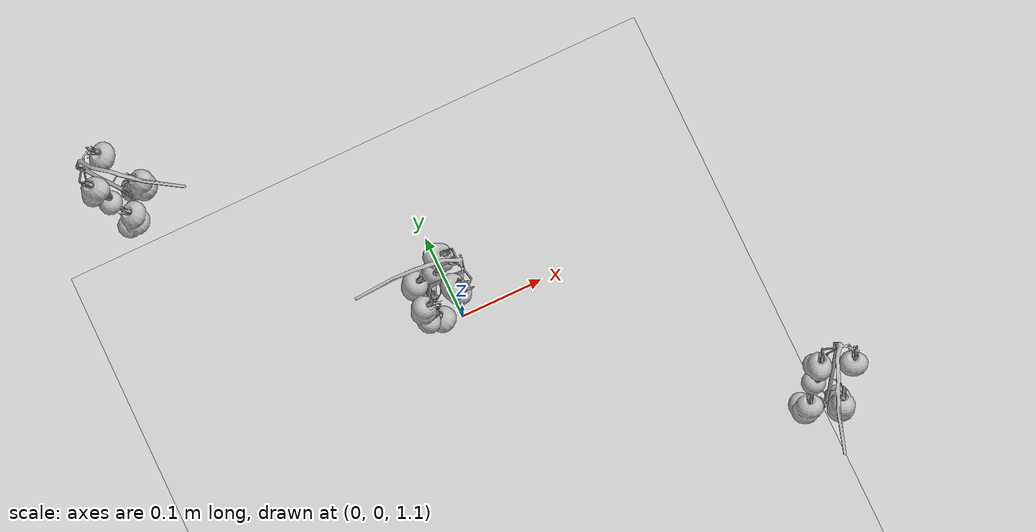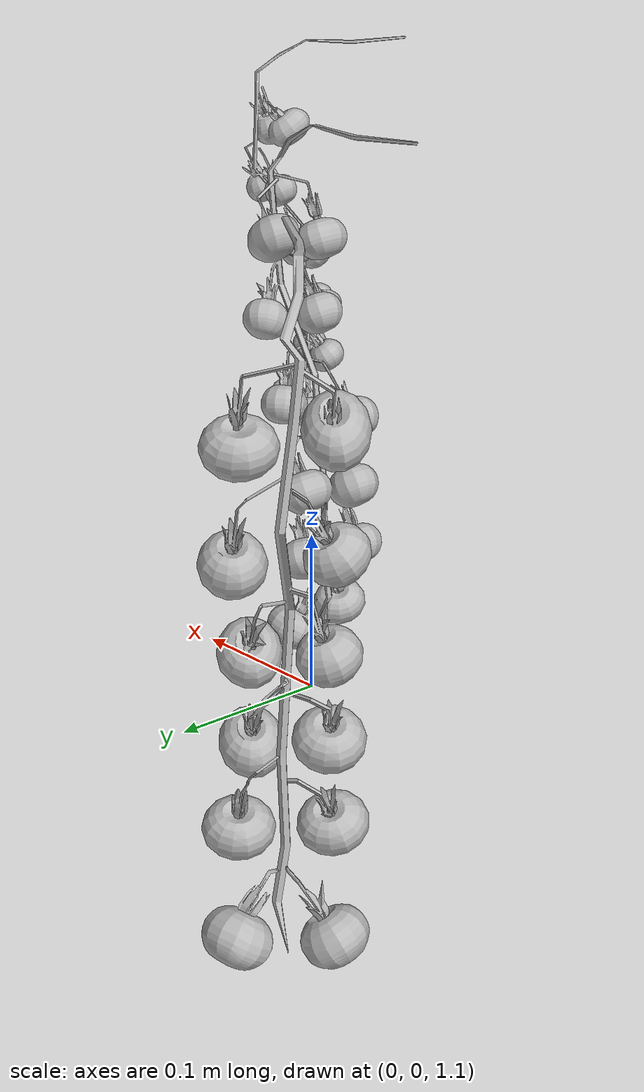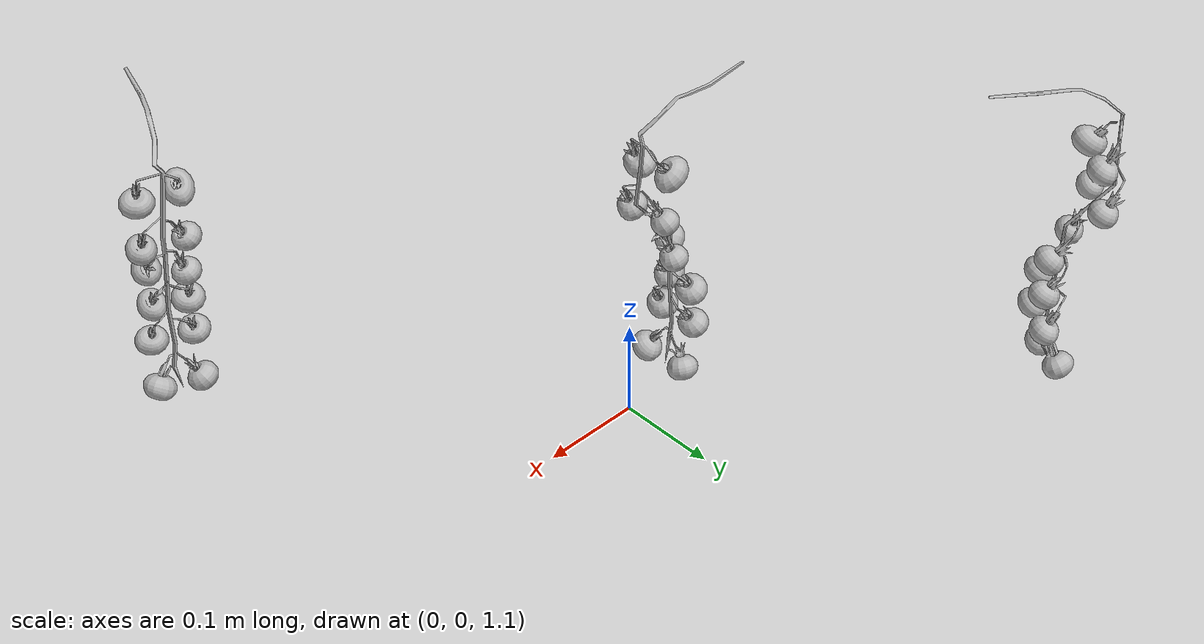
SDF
<?xml version="1.0"?>
<sdf version="1.6">
  <world name="truss_final">
    <include><uri>model://sun</uri></include>
    <include><uri>model://ground_plane</uri></include>
    <include><uri>model://tomato1_truss</uri><name>truss_a</name><pose>0 0 0.3 0 0 0.0</pose></include>
    <include><uri>model://tomato1_truss</uri><name>truss_b</name><pose>0.35 -0.25 0.3 0 0 1.2</pose></include>
    <include><uri>model://tomato1_truss</uri><name>truss_c</name><pose>-0.3 0.3 0.3 0 0 2.5</pose></include>
    <gui><camera name="user_camera"><pose>0.75 -1.1 1.25 0 0.12 0.58</pose></camera></gui>
  </world>
</sdf>

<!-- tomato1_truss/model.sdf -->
<sdf version="1.6">
  <model name="tomato1_truss">
    <static>true</static>
    <link name="link">
      <collision name="collision">
        <geometry>
          <cylinder>
            <radius>0.09</radius>
            <length>0.35</length>
          </cylinder>
        </geometry>
        <pose>0 0.02 0.98 0 0 0</pose>
      </collision>
      <visual name="fruits">
        <geometry>
          <mesh>
            <uri>model://tomato1_truss/meshes/fruits.dae</uri>
          </mesh>
        </geometry>
        <material>
          <script>
            <uri>model://tomato1_truss/materials/scripts/</uri>
            <uri>model://tomato1_truss/materials/textures/</uri>
            <name>fruit</name>
          </script>
        </material>
      </visual>
      <visual name="stems">
        <geometry>
          <mesh>
            <uri>model://tomato1_truss/meshes/stems.dae</uri>
          </mesh>
        </geometry>
        <material>
          <script>
            <uri>model://tomato1_truss/materials/scripts/</uri>
            <uri>model://tomato1_truss/materials/textures/</uri>
            <name>branch</name>
          </script>
        </material>
      </visual>
    </link>
  </model>
</sdf>
